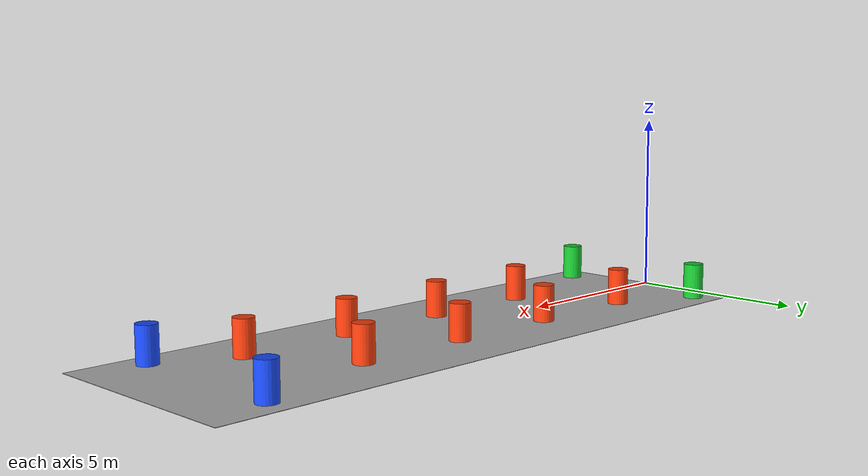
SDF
<?xml version="1.0"?>
<sdf version="1.8">
  <model name="slalom_stage">
    <static>true</static>

    <!-- The model origin is the center of the start line. -->
    <link name="course_surface">
      <visual name="visual">
        <pose>9.0 0 0.006 0 0 0</pose>
        <geometry>
          <box>
            <size>18.0 6.0 0.01</size>
          </box>
        </geometry>
        <material>
          <ambient>0.72 0.72 0.72 1</ambient>
          <diffuse>0.72 0.72 0.72 1</diffuse>
        </material>
      </visual>
    </link>

    <link name="start_left">
      <pose>0.8 2.3 0.5 0 0 0</pose>
      <collision name="collision">
        <geometry><cylinder><radius>0.28</radius><length>1.0</length></cylinder></geometry>
      </collision>
      <visual name="visual">
        <geometry><cylinder><radius>0.28</radius><length>1.0</length></cylinder></geometry>
        <material>
          <ambient>0.1 0.8 0.2 1</ambient>
          <diffuse>0.1 0.8 0.2 1</diffuse>
        </material>
      </visual>
    </link>

    <link name="start_right">
      <pose>0.8 -2.3 0.5 0 0 0</pose>
      <collision name="collision">
        <geometry><cylinder><radius>0.28</radius><length>1.0</length></cylinder></geometry>
      </collision>
      <visual name="visual">
        <geometry><cylinder><radius>0.28</radius><length>1.0</length></cylinder></geometry>
        <material>
          <ambient>0.1 0.8 0.2 1</ambient>
          <diffuse>0.1 0.8 0.2 1</diffuse>
        </material>
      </visual>
    </link>

    <link name="obstacle_01">
      <pose>3.0 1.25 0.5 0 0 0</pose>
      <collision name="collision">
        <geometry><cylinder><radius>0.28</radius><length>1.0</length></cylinder></geometry>
      </collision>
      <visual name="visual">
        <geometry><cylinder><radius>0.28</radius><length>1.0</length></cylinder></geometry>
        <material>
          <ambient>1.0 0.25 0.05 1</ambient>
          <diffuse>1.0 0.25 0.05 1</diffuse>
        </material>
      </visual>
    </link>

    <link name="obstacle_02">
      <pose>4.6 -1.25 0.5 0 0 0</pose>
      <collision name="collision">
        <geometry><cylinder><radius>0.28</radius><length>1.0</length></cylinder></geometry>
      </collision>
      <visual name="visual">
        <geometry><cylinder><radius>0.28</radius><length>1.0</length></cylinder></geometry>
        <material>
          <ambient>1.0 0.25 0.05 1</ambient>
          <diffuse>1.0 0.25 0.05 1</diffuse>
        </material>
      </visual>
    </link>

    <link name="obstacle_03">
      <pose>6.2 1.25 0.5 0 0 0</pose>
      <collision name="collision">
        <geometry><cylinder><radius>0.28</radius><length>1.0</length></cylinder></geometry>
      </collision>
      <visual name="visual">
        <geometry><cylinder><radius>0.28</radius><length>1.0</length></cylinder></geometry>
        <material>
          <ambient>1.0 0.25 0.05 1</ambient>
          <diffuse>1.0 0.25 0.05 1</diffuse>
        </material>
      </visual>
    </link>

    <link name="obstacle_04">
      <pose>7.8 -1.25 0.5 0 0 0</pose>
      <collision name="collision">
        <geometry><cylinder><radius>0.28</radius><length>1.0</length></cylinder></geometry>
      </collision>
      <visual name="visual">
        <geometry><cylinder><radius>0.28</radius><length>1.0</length></cylinder></geometry>
        <material>
          <ambient>1.0 0.25 0.05 1</ambient>
          <diffuse>1.0 0.25 0.05 1</diffuse>
        </material>
      </visual>
    </link>

    <link name="obstacle_05">
      <pose>9.4 1.25 0.5 0 0 0</pose>
      <collision name="collision">
        <geometry><cylinder><radius>0.28</radius><length>1.0</length></cylinder></geometry>
      </collision>
      <visual name="visual">
        <geometry><cylinder><radius>0.28</radius><length>1.0</length></cylinder></geometry>
        <material>
          <ambient>1.0 0.25 0.05 1</ambient>
          <diffuse>1.0 0.25 0.05 1</diffuse>
        </material>
      </visual>
    </link>

    <link name="obstacle_06">
      <pose>11.0 -1.25 0.5 0 0 0</pose>
      <collision name="collision">
        <geometry><cylinder><radius>0.28</radius><length>1.0</length></cylinder></geometry>
      </collision>
      <visual name="visual">
        <geometry><cylinder><radius>0.28</radius><length>1.0</length></cylinder></geometry>
        <material>
          <ambient>1.0 0.25 0.05 1</ambient>
          <diffuse>1.0 0.25 0.05 1</diffuse>
        </material>
      </visual>
    </link>

    <link name="obstacle_07">
      <pose>12.6 1.25 0.5 0 0 0</pose>
      <collision name="collision">
        <geometry><cylinder><radius>0.28</radius><length>1.0</length></cylinder></geometry>
      </collision>
      <visual name="visual">
        <geometry><cylinder><radius>0.28</radius><length>1.0</length></cylinder></geometry>
        <material>
          <ambient>1.0 0.25 0.05 1</ambient>
          <diffuse>1.0 0.25 0.05 1</diffuse>
        </material>
      </visual>
    </link>

    <link name="obstacle_08">
      <pose>14.2 -1.25 0.5 0 0 0</pose>
      <collision name="collision">
        <geometry><cylinder><radius>0.28</radius><length>1.0</length></cylinder></geometry>
      </collision>
      <visual name="visual">
        <geometry><cylinder><radius>0.28</radius><length>1.0</length></cylinder></geometry>
        <material>
          <ambient>1.0 0.25 0.05 1</ambient>
          <diffuse>1.0 0.25 0.05 1</diffuse>
        </material>
      </visual>
    </link>

    <link name="finish_left">
      <pose>16.2 2.3 0.5 0 0 0</pose>
      <collision name="collision">
        <geometry><cylinder><radius>0.28</radius><length>1.0</length></cylinder></geometry>
      </collision>
      <visual name="visual">
        <geometry><cylinder><radius>0.28</radius><length>1.0</length></cylinder></geometry>
        <material>
          <ambient>0.1 0.3 1.0 1</ambient>
          <diffuse>0.1 0.3 1.0 1</diffuse>
        </material>
      </visual>
    </link>

    <link name="finish_right">
      <pose>16.2 -2.3 0.5 0 0 0</pose>
      <collision name="collision">
        <geometry><cylinder><radius>0.28</radius><length>1.0</length></cylinder></geometry>
      </collision>
      <visual name="visual">
        <geometry><cylinder><radius>0.28</radius><length>1.0</length></cylinder></geometry>
        <material>
          <ambient>0.1 0.3 1.0 1</ambient>
          <diffuse>0.1 0.3 1.0 1</diffuse>
        </material>
      </visual>
    </link>
  </model>
</sdf>
